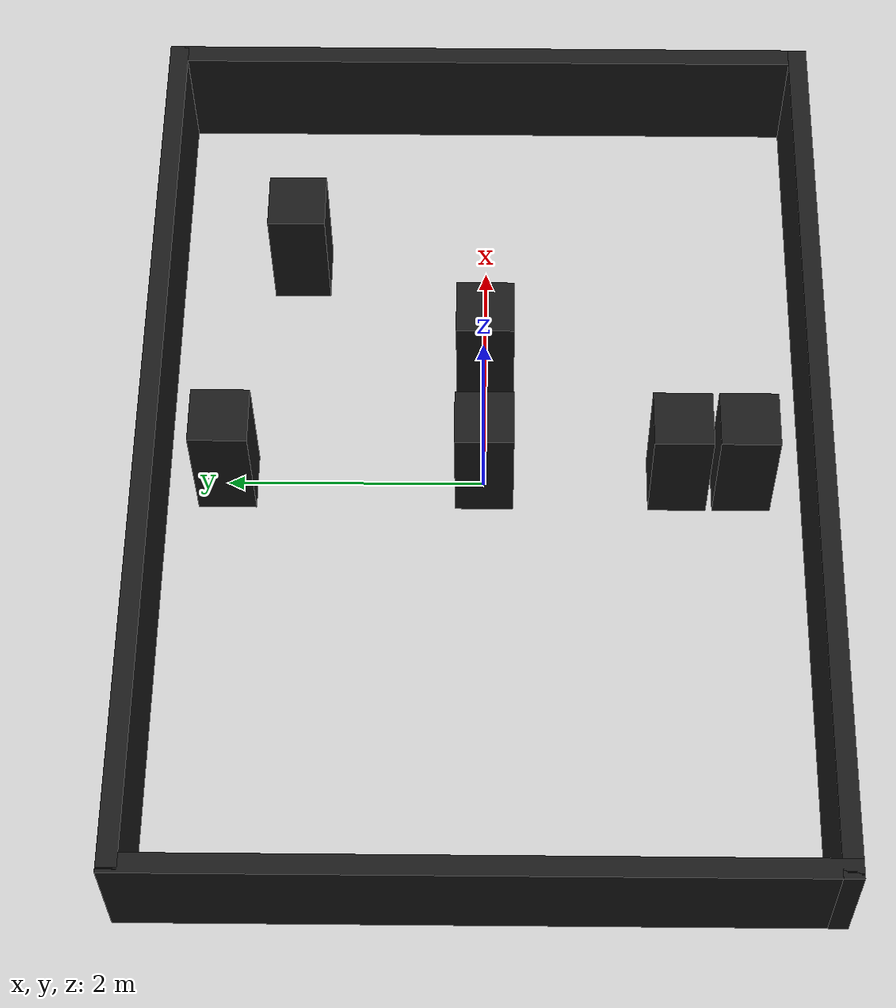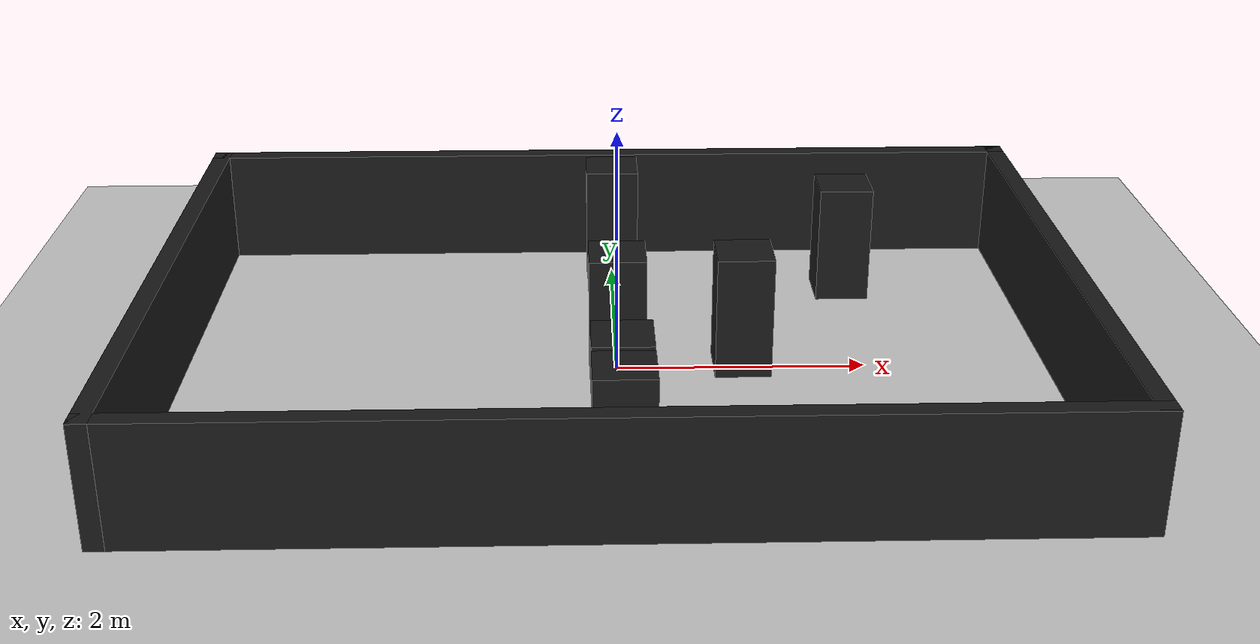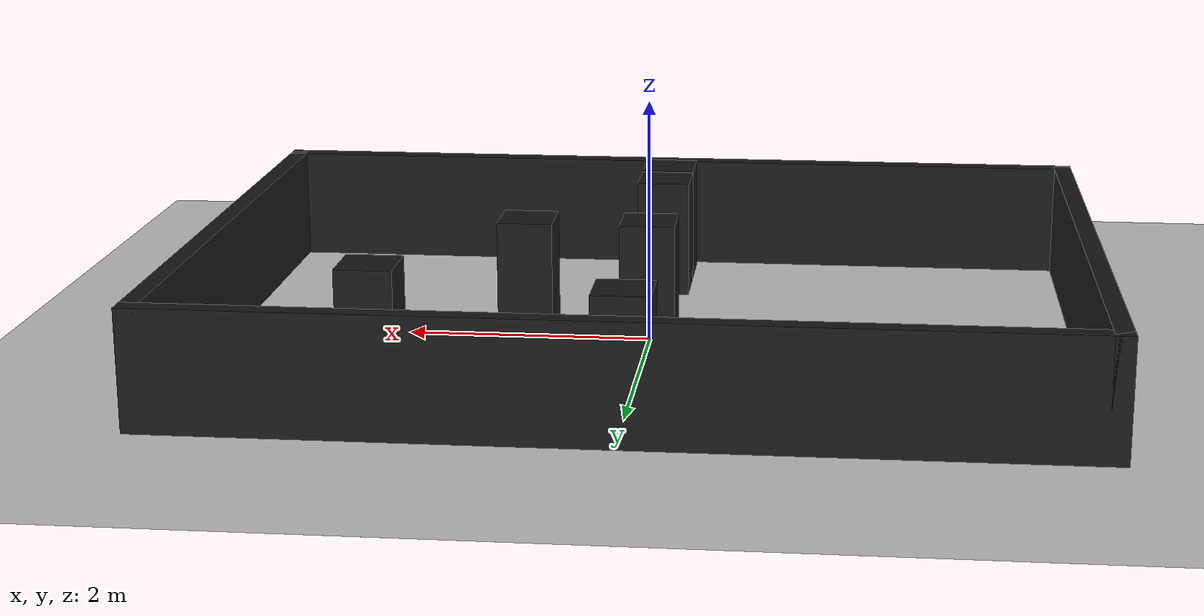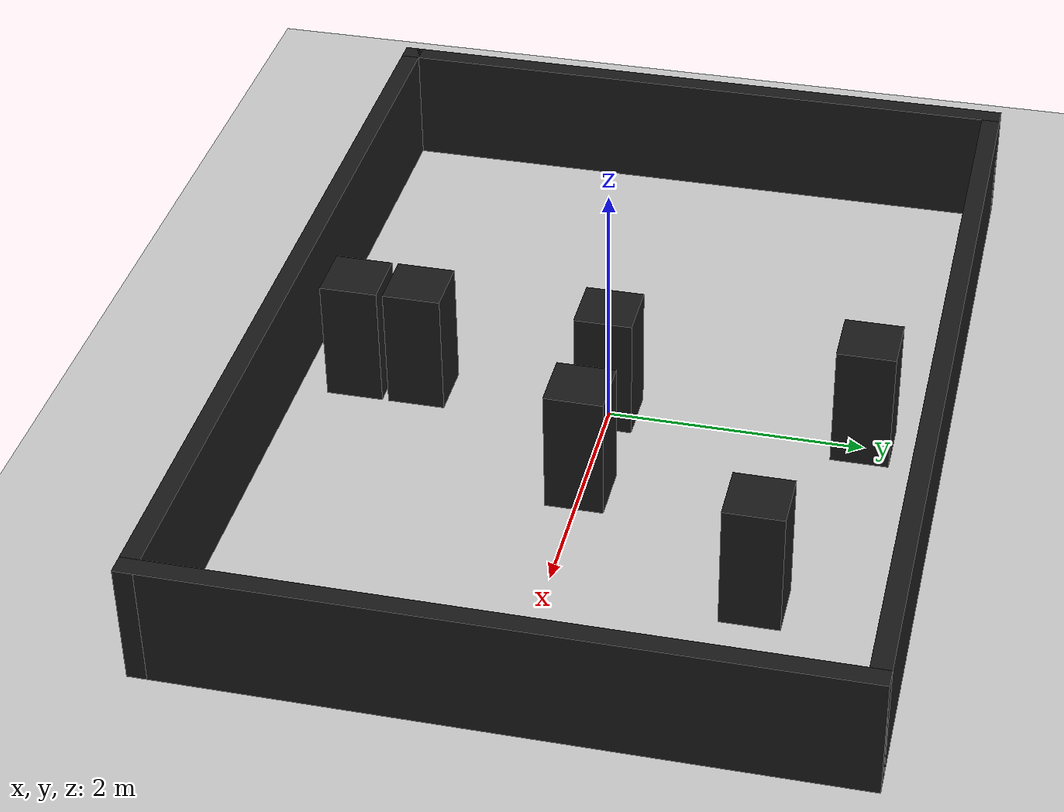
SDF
<sdf version="1.5">
 <world name="RoboCup15MSL">
  <scene><ambient>0.4 0.4 0.4 1</ambient><background>0.7 0.7 0.7 1</background><shadows>0</shadows></scene>
  <spherical_coordinates>
   <surface_model>EARTH_WGS84</surface_model>
   <latitude_deg>0</latitude_deg>
   <longitude_deg>0</longitude_deg>
   <elevation>0</elevation>
   <heading_deg>0</heading_deg>
  </spherical_coordinates>
  <light type="directional" name="sun">
   <cast_shadows>0</cast_shadows>
   <pose>0 0 10 0 0 0</pose>
   <diffuse>0.8 0.8 0.8 1</diffuse>
   <specular>0.2 0.2 0.2 1</specular>
   <attenuation>
    <range>1000</range>
    <constant>0.9</constant>
    <linear>0.01</linear>
    <quadratic>0.001</quadratic>
   </attenuation>
   <direction>-0.5 0.1 -0.9</direction>
  </light>
  <physics type="ode">
   <max_step_size>0.015</max_step_size>
   <real_time_update_rate>67</real_time_update_rate>
   <gravity>0 0 -9.8</gravity>
  </physics>
  <model name="ground_plane">
   <static>true</static>
   <link name="link">
    <collision name="collision">
     <geometry><plane><normal>0 0 1</normal><size>100 100</size></plane></geometry>
     <surface><friction><ode><mu>100</mu><mu2>50</mu2></ode></friction></surface>
    </collision>
    <visual name="visual">
     <cast_shadows>0</cast_shadows>
     <geometry><plane><normal>0 0 1</normal><size>100 100</size></plane></geometry>
     <material>
      <script><uri>file://media/materials/scripts/gazebo.material</uri><name>Gazebo/Grey</name></script>
     </material>
    </visual>
    <velocity_decay><linear>0</linear><angular>0</angular></velocity_decay>
   </link>
  </model>
  <include><pose>0 0 -0.8 0 0 0</pose><uri>model://wall</uri><name>wall</name><static>true</static></include>
  <include>
   <pose>0 0 0.01 0 0 0</pose>
   <uri>model://FIRA_Obstacle</uri>
   <name>obstacle_1</name>
   <static>false</static>
  </include>
  <include>
   <pose>2.0 1.5 0.01 0 0 0</pose>
   <uri>model://FIRA_Obstacle</uri>
   <name>obstacle_2</name>
   <static>false</static>
  </include>
  <include>
   <pose>0 -1.5 0.01 0 0 0</pose>
   <uri>model://FIRA_Obstacle</uri>
   <name>obstacle_3</name>
   <static>false</static>
  </include>
  <include>
   <pose>0 2.0 0.01 0 0 0</pose>
   <uri>model://FIRA_Obstacle</uri>
   <name>obstacle_4</name>
   <static>false</static>
  </include>
  <include>
   <pose>0 -2.0 0.01 0 0 0</pose>
   <uri>model://FIRA_Obstacle</uri>
   <name>obstacle_5</name>
   <static>false</static>
  </include>
  <include>
   <pose>1.0 0.0 0.01 0 0 0</pose>
   <uri>model://FIRA_Obstacle</uri>
   <name>obstacle_6</name>
   <static>false</static>
  </include>
 </world>
</sdf>

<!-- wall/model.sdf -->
<sdf version='1.6'>
  <model name='wall'>
    <pose frame=''>-3.33098 -3.04982 0 0 -0 0</pose>
    <link name='Wall_21'>
      <collision name='Wall_21_Collision'>
        <geometry>
          <box>
            <size>5.25 0.15 1.0</size>
          </box>
        </geometry>
        <pose frame=''>0 0 1.25 0 -0 0</pose>
      </collision>
      <visual name='Wall_21_Visual'>
        <pose frame=''>0 0 1.25 0 -0 0</pose>
        <geometry>
          <box>
            <size>5.25 0.15 1.0</size>
          </box>
        </geometry>
        <material> <!-- Wheel material -->
          <ambient>0.1 0.1 0.1 1</ambient>
          <diffuse>0.1 0.1 0.1 1</diffuse>
          <specular>0 0 0 0</specular>
          <emissive>0 0 0 1</emissive>
        </material> <!-- End wheel material -->
      </visual>
      <pose frame=''>-3.55 0 0 0 -0 1.5708</pose>
    </link>
    <link name='Wall_22'>
      <collision name='Wall_22_Collision'>
        <geometry>
          <box>
            <size>7.25 0.15 1.0</size>
          </box>
        </geometry>
        <pose frame=''>0 0 1.25 0 -0 0</pose>
      </collision>
      <visual name='Wall_22_Visual'>
        <pose frame=''>0 0 1.25 0 -0 0</pose>
        <geometry>
          <box>
            <size>7.25 0.15 1.0</size>
          </box>
        </geometry>
        <material> <!-- Wheel material -->
          <ambient>0.1 0.1 0.1 1</ambient>
          <diffuse>0.1 0.1 0.1 1</diffuse>
          <specular>0 0 0 0</specular>
          <emissive>0 0 0 1</emissive>
        </material> <!-- End wheel material -->
      </visual>
      <pose frame=''>0 2.55 0 0 -0 0</pose>
    </link>
    <link name='Wall_23'>
      <collision name='Wall_23_Collision'>
        <geometry>
          <box>
            <size>5.25 0.15 1.0</size>
          </box>
        </geometry>
        <pose frame=''>0 0 1.25 0 -0 0</pose>
      </collision>
      <visual name='Wall_23_Visual'>
        <pose frame=''>0 0 1.25 0 -0 0</pose>
        <geometry>
          <box>
            <size>5.25 0.15 1.0</size>
          </box>
        </geometry>
        <material> <!-- Wheel material -->
          <ambient>0.1 0.1 0.1 1</ambient>
          <diffuse>0.1 0.1 0.1 1</diffuse>
          <specular>0 0 0 0</specular>
          <emissive>0 0 0 1</emissive>
        </material> <!-- End wheel material -->
      </visual>
      <pose frame=''>3.55 0 0 0 0 -1.5708</pose>
    </link>
    <link name='Wall_24'>
      <collision name='Wall_24_Collision'>
        <geometry>
          <box>
            <size>7.25 0.15 1.0</size>
          </box>
        </geometry>
        <pose frame=''>0 0 1.25 0 -0 0</pose>
      </collision>
      <visual name='Wall_24_Visual'>
        <pose frame=''>0 0 1.25 0 -0 0</pose>
        <geometry>
          <box>
            <size>7.25 0.15 1.0</size>
          </box>
        </geometry>
        <material> <!-- Wheel material -->
          <ambient>0.1 0.1 0.1 1</ambient>
          <diffuse>0.1 0.1 0.1 1</diffuse>
          <specular>0 0 0 0</specular>
          <emissive>0 0 0 1</emissive>
        </material> <!-- End wheel material -->
      </visual>
      <pose frame=''>0 -2.55 0 0 -0 3.14159</pose>
    </link>
    <static>1</static>
  </model>
</sdf>

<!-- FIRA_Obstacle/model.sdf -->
<sdf version="1.4">
   <model name="avoid_goal">
      <link name="base">
         <pose>0.0 0.0 0.51 0 0 0</pose>

         <inertial>
            <mass>31</mass>
            <pose>0 0 0 0 0 0</pose>
            <inertia>
               <ixx>100</ixx>
               <ixy>0</ixy>
               <ixz>0</ixz>
               <iyy>100</iyy>
               <iyz>0</iyz>
               <izz>2.86</izz>
            </inertia>
         </inertial>

         <collision name="box_collision">
            <geometry>
               <box>
                  <size>.45 .45 1.0</size>
               </box>
            </geometry>
            <surface>
               <bounce>
                  <restitution_coefficient>0</restitution_coefficient>
               </bounce>
               <friction>
                  <ode>
                     <mu>0.1</mu>
                     <mu2>0.1</mu2>
                  </ode>
               </friction>
            </surface>
         </collision>

         <visual name="visual">
            <geometry>
               <box>
                  <size>.45 .45 1.0</size>
               </box>
            </geometry>

            <material> <!-- Wheel material -->
               <ambient>0.1 0.1 0.1 1</ambient>
               <diffuse>0.1 0.1 0.1 1</diffuse>
               <specular>0 0 0 0</specular>
               <emissive>0 0 0 1</emissive>
            </material> <!-- End wheel material -->
         </visual>

         <velocity_decay>
            <linear>0</linear>
            <angular>0</angular>
         </velocity_decay>
         <self_collide>0</self_collide>
         <gravity>1</gravity>

         <sensor name="RFsrRL" type="contact">
            <always_on>1</always_on>
            <update_rate>20</update_rate>
            <visualize>true</visualize>
            <contact>
               <collision>box_collision</collision>
            </contact>
            <plugin name="gazebo_ros_bumper_ controller" filename="libgazebo_ros_bumper.so">
               <alwaysOn>true</alwaysOn>
               <updateRate>20</updateRate>
               <bumperTopicName>bumper</bumperTopicName>
               <frameName>symbol</frameName>
            </plugin>
         </sensor>
      </link>

      <plugin name="nubot_gazebo" filename="libnubot_gazebo.so" />
   </model>
</sdf>
